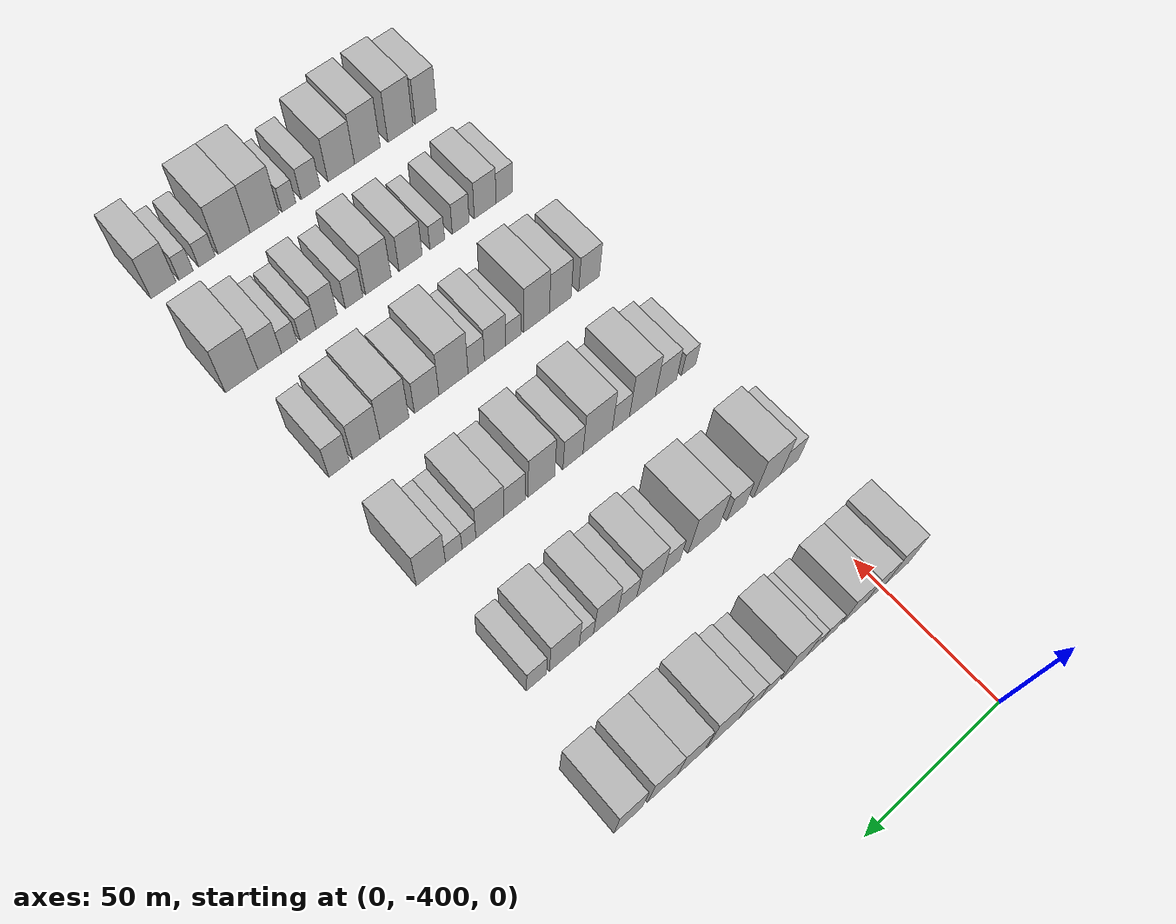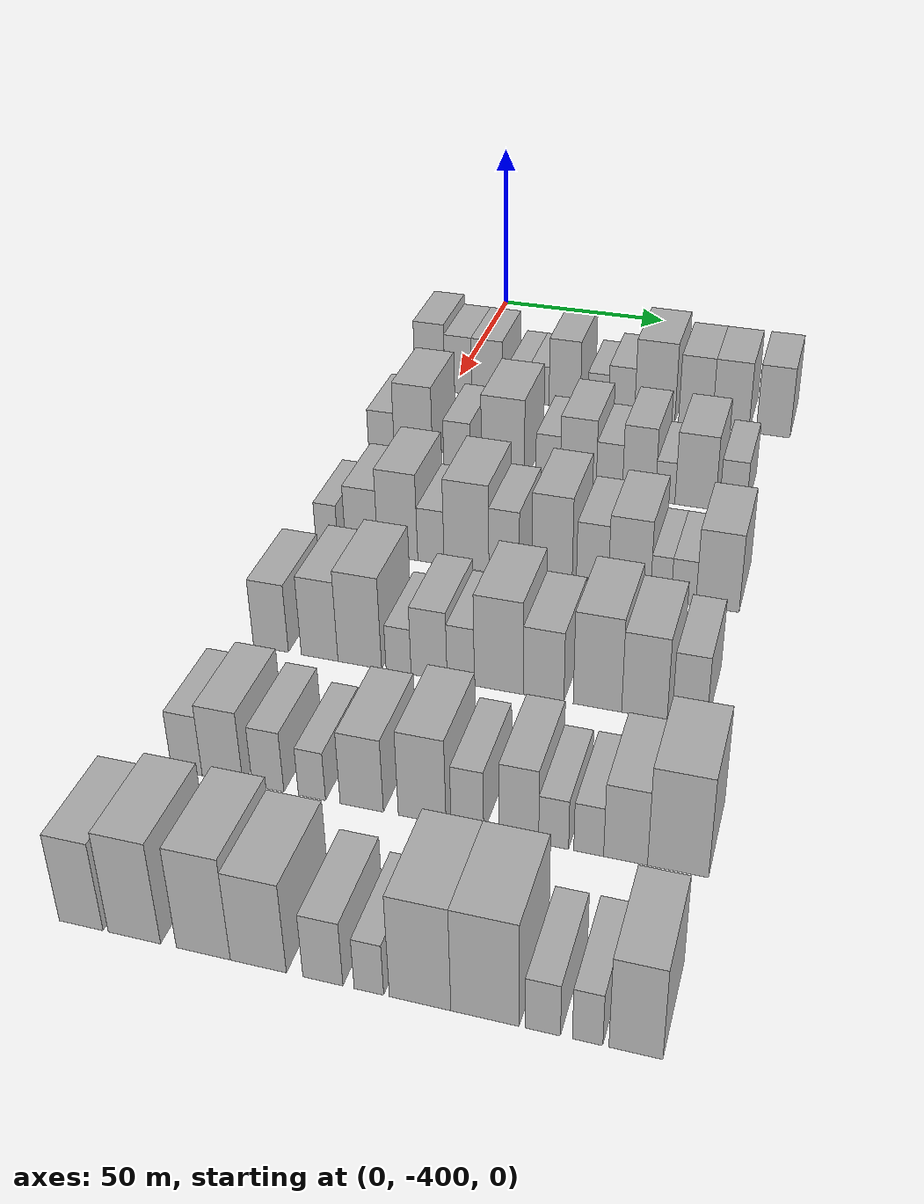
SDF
<sdf version="1.6">
 <world name="default">
  <model name="building_24">
   <static>1</static>
   <pose>50.0000 -405.9021 0 0.000000 0.000000 0.000000</pose>
   <link name="link">
    <pose>0 0 10.50 0 0 0</pose>
    <collision name="collision"><geometry><box><size>20.0000 8.8274 21.0000</size></box></geometry></collision>
    <visual name="visual">
     <cast_shadows>0</cast_shadows>
     <geometry><box><size>20.0000 8.8274 21.0000</size></box></geometry>
     <material>
      <script>
       <uri>model://HANNAS_wall/materials/scripts</uri>
       <uri>model://HANNAS_wall/materials/textures</uri>
       <name>vrc/HANNAS_wall</name>
      </script>
     </material>
    </visual>
   </link>
  </model>
  <model name="building_25">
   <static>1</static>
   <pose>50.0000 -397.5313 0 0.000000 0.000000 0.000000</pose>
   <link name="link">
    <pose>0 0 9.00 0 0 0</pose>
    <collision name="collision"><geometry><box><size>20.0000 7.9142 18.0000</size></box></geometry></collision>
    <visual name="visual">
     <cast_shadows>0</cast_shadows>
     <geometry><box><size>20.0000 7.9142 18.0000</size></box></geometry>
     <material>
      <script>
       <uri>model://HANNAS_wall/materials/scripts</uri>
       <uri>model://HANNAS_wall/materials/textures</uri>
       <name>vrc/HANNAS_wall</name>
      </script>
     </material>
    </visual>
   </link>
  </model>
  <model name="building_26">
   <static>1</static>
   <pose>50.0000 -389.0778 0 0.000000 0.000000 0.000000</pose>
   <link name="link">
    <pose>0 0 9.00 0 0 0</pose>
    <collision name="collision"><geometry><box><size>20.0000 8.9928 18.0000</size></box></geometry></collision>
    <visual name="visual">
     <cast_shadows>0</cast_shadows>
     <geometry><box><size>20.0000 8.9928 18.0000</size></box></geometry>
     <material>
      <script>
       <uri>model://HANNAS_wall/materials/scripts</uri>
       <uri>model://HANNAS_wall/materials/textures</uri>
       <name>vrc/HANNAS_wall</name>
      </script>
     </material>
    </visual>
   </link>
  </model>
  <model name="building_27">
   <static>1</static>
   <pose>50.0000 -379.6226 0 0.000000 0.000000 0.000000</pose>
   <link name="link">
    <pose>0 0 6.00 0 0 0</pose>
    <collision name="collision"><geometry><box><size>20.0000 5.9175 12.0000</size></box></geometry></collision>
    <visual name="visual">
     <cast_shadows>0</cast_shadows>
     <geometry><box><size>20.0000 5.9175 12.0000</size></box></geometry>
     <material>
      <script>
       <uri>model://HANNAS_wall/materials/scripts</uri>
       <uri>model://HANNAS_wall/materials/textures</uri>
       <name>vrc/HANNAS_wall</name>
      </script>
     </material>
    </visual>
   </link>
  </model>
  <model name="building_28">
   <static>1</static>
   <pose>50.0000 -373.9000 0 0.000000 0.000000 0.000000</pose>
   <link name="link">
    <pose>0 0 6.00 0 0 0</pose>
    <collision name="collision"><geometry><box><size>20.0000 5.5277 12.0000</size></box></geometry></collision>
    <visual name="visual">
     <cast_shadows>0</cast_shadows>
     <geometry><box><size>20.0000 5.5277 12.0000</size></box></geometry>
     <material>
      <script>
       <uri>model://HANNAS_wall/materials/scripts</uri>
       <uri>model://HANNAS_wall/materials/textures</uri>
       <name>vrc/HANNAS_wall</name>
      </script>
     </material>
    </visual>
   </link>
  </model>
  <model name="building_29">
   <static>1</static>
   <pose>50.0000 -366.6742 0 0.000000 0.000000 0.000000</pose>
   <link name="link">
    <pose>0 0 10.50 0 0 0</pose>
    <collision name="collision"><geometry><box><size>20.0000 8.9239 21.0000</size></box></geometry></collision>
    <visual name="visual">
     <cast_shadows>0</cast_shadows>
     <geometry><box><size>20.0000 8.9239 21.0000</size></box></geometry>
     <material>
      <script>
       <uri>model://HANNAS_wall/materials/scripts</uri>
       <uri>model://HANNAS_wall/materials/textures</uri>
       <name>vrc/HANNAS_wall</name>
      </script>
     </material>
    </visual>
   </link>
  </model>
  <model name="building_30">
   <static>1</static>
   <pose>50.0000 -357.2572 0 0.000000 0.000000 0.000000</pose>
   <link name="link">
    <pose>0 0 6.00 0 0 0</pose>
    <collision name="collision"><geometry><box><size>20.0000 5.9101 12.0000</size></box></geometry></collision>
    <visual name="visual">
     <cast_shadows>0</cast_shadows>
     <geometry><box><size>20.0000 5.9101 12.0000</size></box></geometry>
     <material>
      <script>
       <uri>model://HANNAS_wall/materials/scripts</uri>
       <uri>model://HANNAS_wall/materials/textures</uri>
       <name>vrc/HANNAS_wall</name>
      </script>
     </material>
    </visual>
   </link>
  </model>
  <model name="building_31">
   <static>1</static>
   <pose>50.0000 -350.6123 0 0.000000 0.000000 0.000000</pose>
   <link name="link">
    <pose>0 0 7.50 0 0 0</pose>
    <collision name="collision"><geometry><box><size>20.0000 7.3797 15.0000</size></box></geometry></collision>
    <visual name="visual">
     <cast_shadows>0</cast_shadows>
     <geometry><box><size>20.0000 7.3797 15.0000</size></box></geometry>
     <material>
      <script>
       <uri>model://HANNAS_wall/materials/scripts</uri>
       <uri>model://HANNAS_wall/materials/textures</uri>
       <name>vrc/HANNAS_wall</name>
      </script>
     </material>
    </visual>
   </link>
  </model>
  <model name="building_32">
   <static>1</static>
   <pose>50.0000 -341.3082 0 0.000000 0.000000 0.000000</pose>
   <link name="link">
    <pose>0 0 12.00 0 0 0</pose>
    <collision name="collision"><geometry><box><size>20.0000 11.2284 24.0000</size></box></geometry></collision>
    <visual name="visual">
     <cast_shadows>0</cast_shadows>
     <geometry><box><size>20.0000 11.2284 24.0000</size></box></geometry>
     <material>
      <script>
       <uri>model://HANNAS_wall/materials/scripts</uri>
       <uri>model://HANNAS_wall/materials/textures</uri>
       <name>vrc/HANNAS_wall</name>
      </script>
     </material>
    </visual>
   </link>
  </model>
  <model name="building_33">
   <static>1</static>
   <pose>50.0000 -330.0692 0 0.000000 0.000000 0.000000</pose>
   <link name="link">
    <pose>0 0 10.50 0 0 0</pose>
    <collision name="collision"><geometry><box><size>20.0000 9.2495 21.0000</size></box></geometry></collision>
    <visual name="visual">
     <cast_shadows>0</cast_shadows>
     <geometry><box><size>20.0000 9.2495 21.0000</size></box></geometry>
     <material>
      <script>
       <uri>model://HANNAS_wall/materials/scripts</uri>
       <uri>model://HANNAS_wall/materials/textures</uri>
       <name>vrc/HANNAS_wall</name>
      </script>
     </material>
    </visual>
   </link>
  </model>
  <model name="building_34">
   <static>1</static>
   <pose>50.0000 -320.4527 0 0.000000 0.000000 0.000000</pose>
   <link name="link">
    <pose>0 0 10.50 0 0 0</pose>
    <collision name="collision"><geometry><box><size>20.0000 9.9836 21.0000</size></box></geometry></collision>
    <visual name="visual">
     <cast_shadows>0</cast_shadows>
     <geometry><box><size>20.0000 9.9836 21.0000</size></box></geometry>
     <material>
      <script>
       <uri>model://HANNAS_wall/materials/scripts</uri>
       <uri>model://HANNAS_wall/materials/textures</uri>
       <name>vrc/HANNAS_wall</name>
      </script>
     </material>
    </visual>
   </link>
  </model>
  <model name="building_35">
   <static>1</static>
   <pose>50.0000 -308.9060 0 0.000000 0.000000 0.000000</pose>
   <link name="link">
    <pose>0 0 10.50 0 0 0</pose>
    <collision name="collision"><geometry><box><size>20.0000 9.1098 21.0000</size></box></geometry></collision>
    <visual name="visual">
     <cast_shadows>0</cast_shadows>
     <geometry><box><size>20.0000 9.1098 21.0000</size></box></geometry>
     <material>
      <script>
       <uri>model://HANNAS_wall/materials/scripts</uri>
       <uri>model://HANNAS_wall/materials/textures</uri>
       <name>vrc/HANNAS_wall</name>
      </script>
     </material>
    </visual>
   </link>
  </model>
  <model name="building_163">
   <static>1</static>
   <pose>90.0000 -406.2391 0 0.000000 0.000000 0.000000</pose>
   <link name="link">
    <pose>0 0 7.50 0 0 0</pose>
    <collision name="collision"><geometry><box><size>20.0000 7.1128 15.0000</size></box></geometry></collision>
    <visual name="visual">
     <cast_shadows>0</cast_shadows>
     <geometry><box><size>20.0000 7.1128 15.0000</size></box></geometry>
     <material>
      <script>
       <uri>model://HANNAS_wall/materials/scripts</uri>
       <uri>model://HANNAS_wall/materials/textures</uri>
       <name>vrc/HANNAS_wall</name>
      </script>
     </material>
    </visual>
   </link>
  </model>
  <model name="building_164">
   <static>1</static>
   <pose>90.0000 -397.4641 0 0.000000 0.000000 0.000000</pose>
   <link name="link">
    <pose>0 0 12.00 0 0 0</pose>
    <collision name="collision"><geometry><box><size>20.0000 10.4373 24.0000</size></box></geometry></collision>
    <visual name="visual">
     <cast_shadows>0</cast_shadows>
     <geometry><box><size>20.0000 10.4373 24.0000</size></box></geometry>
     <material>
      <script>
       <uri>model://HANNAS_wall/materials/scripts</uri>
       <uri>model://HANNAS_wall/materials/textures</uri>
       <name>vrc/HANNAS_wall</name>
      </script>
     </material>
    </visual>
   </link>
  </model>
  <model name="building_165">
   <static>1</static>
   <pose>90.0000 -385.6408 0 0.000000 0.000000 0.000000</pose>
   <link name="link">
    <pose>0 0 7.50 0 0 0</pose>
    <collision name="collision"><geometry><box><size>20.0000 7.2094 15.0000</size></box></geometry></collision>
    <visual name="visual">
     <cast_shadows>0</cast_shadows>
     <geometry><box><size>20.0000 7.2094 15.0000</size></box></geometry>
     <material>
      <script>
       <uri>model://HANNAS_wall/materials/scripts</uri>
       <uri>model://HANNAS_wall/materials/textures</uri>
       <name>vrc/HANNAS_wall</name>
      </script>
     </material>
    </visual>
   </link>
  </model>
  <model name="building_166">
   <static>1</static>
   <pose>90.0000 -373.3137 0 0.000000 0.000000 0.000000</pose>
   <link name="link">
    <pose>0 0 12.00 0 0 0</pose>
    <collision name="collision"><geometry><box><size>20.0000 11.4447 24.0000</size></box></geometry></collision>
    <visual name="visual">
     <cast_shadows>0</cast_shadows>
     <geometry><box><size>20.0000 11.4447 24.0000</size></box></geometry>
     <material>
      <script>
       <uri>model://HANNAS_wall/materials/scripts</uri>
       <uri>model://HANNAS_wall/materials/textures</uri>
       <name>vrc/HANNAS_wall</name>
      </script>
     </material>
    </visual>
   </link>
  </model>
  <model name="building_167">
   <static>1</static>
   <pose>90.0000 -361.3906 0 0.000000 0.000000 0.000000</pose>
   <link name="link">
    <pose>0 0 7.50 0 0 0</pose>
    <collision name="collision"><geometry><box><size>20.0000 6.4017 15.0000</size></box></geometry></collision>
    <visual name="visual">
     <cast_shadows>0</cast_shadows>
     <geometry><box><size>20.0000 6.4017 15.0000</size></box></geometry>
     <material>
      <script>
       <uri>model://HANNAS_wall/materials/scripts</uri>
       <uri>model://HANNAS_wall/materials/textures</uri>
       <name>vrc/HANNAS_wall</name>
      </script>
     </material>
    </visual>
   </link>
  </model>
  <model name="building_168">
   <static>1</static>
   <pose>90.0000 -353.5138 0 0.000000 0.000000 0.000000</pose>
   <link name="link">
    <pose>0 0 10.50 0 0 0</pose>
    <collision name="collision"><geometry><box><size>20.0000 9.3519 21.0000</size></box></geometry></collision>
    <visual name="visual">
     <cast_shadows>0</cast_shadows>
     <geometry><box><size>20.0000 9.3519 21.0000</size></box></geometry>
     <material>
      <script>
       <uri>model://HANNAS_wall/materials/scripts</uri>
       <uri>model://HANNAS_wall/materials/textures</uri>
       <name>vrc/HANNAS_wall</name>
      </script>
     </material>
    </visual>
   </link>
  </model>
  <model name="building_169">
   <static>1</static>
   <pose>90.0000 -345.4532 0 0.000000 0.000000 0.000000</pose>
   <link name="link">
    <pose>0 0 7.50 0 0 0</pose>
    <collision name="collision"><geometry><box><size>20.0000 6.7693 15.0000</size></box></geometry></collision>
    <visual name="visual">
     <cast_shadows>0</cast_shadows>
     <geometry><box><size>20.0000 6.7693 15.0000</size></box></geometry>
     <material>
      <script>
       <uri>model://HANNAS_wall/materials/scripts</uri>
       <uri>model://HANNAS_wall/materials/textures</uri>
       <name>vrc/HANNAS_wall</name>
      </script>
     </material>
    </visual>
   </link>
  </model>
  <model name="building_170">
   <static>1</static>
   <pose>90.0000 -337.8330 0 0.000000 0.000000 0.000000</pose>
   <link name="link">
    <pose>0 0 10.50 0 0 0</pose>
    <collision name="collision"><geometry><box><size>20.0000 8.4710 21.0000</size></box></geometry></collision>
    <visual name="visual">
     <cast_shadows>0</cast_shadows>
     <geometry><box><size>20.0000 8.4710 21.0000</size></box></geometry>
     <material>
      <script>
       <uri>model://HANNAS_wall/materials/scripts</uri>
       <uri>model://HANNAS_wall/materials/textures</uri>
       <name>vrc/HANNAS_wall</name>
      </script>
     </material>
    </visual>
   </link>
  </model>
  <model name="building_171">
   <static>1</static>
   <pose>90.0000 -331.0953 0 0.000000 0.000000 0.000000</pose>
   <link name="link">
    <pose>0 0 6.00 0 0 0</pose>
    <collision name="collision"><geometry><box><size>20.0000 5.0045 12.0000</size></box></geometry></collision>
    <visual name="visual">
     <cast_shadows>0</cast_shadows>
     <geometry><box><size>20.0000 5.0045 12.0000</size></box></geometry>
     <material>
      <script>
       <uri>model://HANNAS_wall/materials/scripts</uri>
       <uri>model://HANNAS_wall/materials/textures</uri>
       <name>vrc/HANNAS_wall</name>
      </script>
     </material>
    </visual>
   </link>
  </model>
  <model name="building_172">
   <static>1</static>
   <pose>90.0000 -323.5090 0 0.000000 0.000000 0.000000</pose>
   <link name="link">
    <pose>0 0 10.50 0 0 0</pose>
    <collision name="collision"><geometry><box><size>20.0000 10.1680 21.0000</size></box></geometry></collision>
    <visual name="visual">
     <cast_shadows>0</cast_shadows>
     <geometry><box><size>20.0000 10.1680 21.0000</size></box></geometry>
     <material>
      <script>
       <uri>model://HANNAS_wall/materials/scripts</uri>
       <uri>model://HANNAS_wall/materials/textures</uri>
       <name>vrc/HANNAS_wall</name>
      </script>
     </material>
    </visual>
   </link>
  </model>
  <model name="building_173">
   <static>1</static>
   <pose>90.0000 -314.0834 0 0.000000 0.000000 0.000000</pose>
   <link name="link">
    <pose>0 0 7.50 0 0 0</pose>
    <collision name="collision"><geometry><box><size>20.0000 6.6833 15.0000</size></box></geometry></collision>
    <visual name="visual">
     <cast_shadows>0</cast_shadows>
     <geometry><box><size>20.0000 6.6833 15.0000</size></box></geometry>
     <material>
      <script>
       <uri>model://HANNAS_wall/materials/scripts</uri>
       <uri>model://HANNAS_wall/materials/textures</uri>
       <name>vrc/HANNAS_wall</name>
      </script>
     </material>
    </visual>
   </link>
  </model>
  <model name="building_301">
   <static>1</static>
   <pose>130.0000 -406.1514 0 0.000000 0.000000 0.000000</pose>
   <link name="link">
    <pose>0 0 6.00 0 0 0</pose>
    <collision name="collision"><geometry><box><size>20.0000 5.6034 12.0000</size></box></geometry></collision>
    <visual name="visual">
     <cast_shadows>0</cast_shadows>
     <geometry><box><size>20.0000 5.6034 12.0000</size></box></geometry>
     <material>
      <script>
       <uri>model://HANNAS_wall/materials/scripts</uri>
       <uri>model://HANNAS_wall/materials/textures</uri>
       <name>vrc/HANNAS_wall</name>
      </script>
     </material>
    </visual>
   </link>
  </model>
  <model name="building_302">
   <static>1</static>
   <pose>130.0000 -397.2637 0 0.000000 0.000000 0.000000</pose>
   <link name="link">
    <pose>0 0 9.00 0 0 0</pose>
    <collision name="collision"><geometry><box><size>20.0000 8.1720 18.0000</size></box></geometry></collision>
    <visual name="visual">
     <cast_shadows>0</cast_shadows>
     <geometry><box><size>20.0000 8.1720 18.0000</size></box></geometry>
     <material>
      <script>
       <uri>model://HANNAS_wall/materials/scripts</uri>
       <uri>model://HANNAS_wall/materials/textures</uri>
       <name>vrc/HANNAS_wall</name>
      </script>
     </material>
    </visual>
   </link>
  </model>
  <model name="building_303">
   <static>1</static>
   <pose>130.0000 -388.1734 0 0.000000 0.000000 0.000000</pose>
   <link name="link">
    <pose>0 0 12.00 0 0 0</pose>
    <collision name="collision"><geometry><box><size>20.0000 10.0086 24.0000</size></box></geometry></collision>
    <visual name="visual">
     <cast_shadows>0</cast_shadows>
     <geometry><box><size>20.0000 10.0086 24.0000</size></box></geometry>
     <material>
      <script>
       <uri>model://HANNAS_wall/materials/scripts</uri>
       <uri>model://HANNAS_wall/materials/textures</uri>
       <name>vrc/HANNAS_wall</name>
      </script>
     </material>
    </visual>
   </link>
  </model>
  <model name="building_304">
   <static>1</static>
   <pose>130.0000 -379.8913 0 0.000000 0.000000 0.000000</pose>
   <link name="link">
    <pose>0 0 7.50 0 0 0</pose>
    <collision name="collision"><geometry><box><size>20.0000 6.5557 15.0000</size></box></geometry></collision>
    <visual name="visual">
     <cast_shadows>0</cast_shadows>
     <geometry><box><size>20.0000 6.5557 15.0000</size></box></geometry>
     <material>
      <script>
       <uri>model://HANNAS_wall/materials/scripts</uri>
       <uri>model://HANNAS_wall/materials/textures</uri>
       <name>vrc/HANNAS_wall</name>
      </script>
     </material>
    </visual>
   </link>
  </model>
  <model name="building_305">
   <static>1</static>
   <pose>130.0000 -371.1156 0 0.000000 0.000000 0.000000</pose>
   <link name="link">
    <pose>0 0 12.00 0 0 0</pose>
    <collision name="collision"><geometry><box><size>20.0000 10.9956 24.0000</size></box></geometry></collision>
    <visual name="visual">
     <cast_shadows>0</cast_shadows>
     <geometry><box><size>20.0000 10.9956 24.0000</size></box></geometry>
     <material>
      <script>
       <uri>model://HANNAS_wall/materials/scripts</uri>
       <uri>model://HANNAS_wall/materials/textures</uri>
       <name>vrc/HANNAS_wall</name>
      </script>
     </material>
    </visual>
   </link>
  </model>
  <model name="building_306">
   <static>1</static>
   <pose>130.0000 -361.9211 0 0.000000 0.000000 0.000000</pose>
   <link name="link">
    <pose>0 0 9.00 0 0 0</pose>
    <collision name="collision"><geometry><box><size>20.0000 7.3933 18.0000</size></box></geometry></collision>
    <visual name="visual">
     <cast_shadows>0</cast_shadows>
     <geometry><box><size>20.0000 7.3933 18.0000</size></box></geometry>
     <material>
      <script>
       <uri>model://HANNAS_wall/materials/scripts</uri>
       <uri>model://HANNAS_wall/materials/textures</uri>
       <name>vrc/HANNAS_wall</name>
      </script>
     </material>
    </visual>
   </link>
  </model>
  <model name="building_307">
   <static>1</static>
   <pose>130.0000 -350.4132 0 0.000000 0.000000 0.000000</pose>
   <link name="link">
    <pose>0 0 12.00 0 0 0</pose>
    <collision name="collision"><geometry><box><size>20.0000 9.6226 24.0000</size></box></geometry></collision>
    <visual name="visual">
     <cast_shadows>0</cast_shadows>
     <geometry><box><size>20.0000 9.6226 24.0000</size></box></geometry>
     <material>
      <script>
       <uri>model://HANNAS_wall/materials/scripts</uri>
       <uri>model://HANNAS_wall/materials/textures</uri>
       <name>vrc/HANNAS_wall</name>
      </script>
     </material>
    </visual>
   </link>
  </model>
  <model name="building_308">
   <static>1</static>
   <pose>130.0000 -340.8310 0 0.000000 0.000000 0.000000</pose>
   <link name="link">
    <pose>0 0 9.00 0 0 0</pose>
    <collision name="collision"><geometry><box><size>20.0000 7.5417 18.0000</size></box></geometry></collision>
    <visual name="visual">
     <cast_shadows>0</cast_shadows>
     <geometry><box><size>20.0000 7.5417 18.0000</size></box></geometry>
     <material>
      <script>
       <uri>model://HANNAS_wall/materials/scripts</uri>
       <uri>model://HANNAS_wall/materials/textures</uri>
       <name>vrc/HANNAS_wall</name>
      </script>
     </material>
    </visual>
   </link>
  </model>
  <model name="building_309">
   <static>1</static>
   <pose>130.0000 -332.1307 0 0.000000 0.000000 0.000000</pose>
   <link name="link">
    <pose>0 0 10.50 0 0 0</pose>
    <collision name="collision"><geometry><box><size>20.0000 9.8589 21.0000</size></box></geometry></collision>
    <visual name="visual">
     <cast_shadows>0</cast_shadows>
     <geometry><box><size>20.0000 9.8589 21.0000</size></box></geometry>
     <material>
      <script>
       <uri>model://HANNAS_wall/materials/scripts</uri>
       <uri>model://HANNAS_wall/materials/textures</uri>
       <name>vrc/HANNAS_wall</name>
      </script>
     </material>
    </visual>
   </link>
  </model>
  <model name="building_310">
   <static>1</static>
   <pose>130.0000 -324.7926 0 0.000000 0.000000 0.000000</pose>
   <link name="link">
    <pose>0 0 6.00 0 0 0</pose>
    <collision name="collision"><geometry><box><size>20.0000 4.8172 12.0000</size></box></geometry></collision>
    <visual name="visual">
     <cast_shadows>0</cast_shadows>
     <geometry><box><size>20.0000 4.8172 12.0000</size></box></geometry>
     <material>
      <script>
       <uri>model://HANNAS_wall/materials/scripts</uri>
       <uri>model://HANNAS_wall/materials/textures</uri>
       <name>vrc/HANNAS_wall</name>
      </script>
     </material>
    </visual>
   </link>
  </model>
  <model name="building_311">
   <static>1</static>
   <pose>130.0000 -319.5479 0 0.000000 0.000000 0.000000</pose>
   <link name="link">
    <pose>0 0 6.00 0 0 0</pose>
    <collision name="collision"><geometry><box><size>20.0000 5.6723 12.0000</size></box></geometry></collision>
    <visual name="visual">
     <cast_shadows>0</cast_shadows>
     <geometry><box><size>20.0000 5.6723 12.0000</size></box></geometry>
     <material>
      <script>
       <uri>model://HANNAS_wall/materials/scripts</uri>
       <uri>model://HANNAS_wall/materials/textures</uri>
       <name>vrc/HANNAS_wall</name>
      </script>
     </material>
    </visual>
   </link>
  </model>
  <model name="building_312">
   <static>1</static>
   <pose>130.0000 -311.7525 0 0.000000 0.000000 0.000000</pose>
   <link name="link">
    <pose>0 0 10.50 0 0 0</pose>
    <collision name="collision"><geometry><box><size>20.0000 9.9184 21.0000</size></box></geometry></collision>
    <visual name="visual">
     <cast_shadows>0</cast_shadows>
     <geometry><box><size>20.0000 9.9184 21.0000</size></box></geometry>
     <material>
      <script>
       <uri>model://HANNAS_wall/materials/scripts</uri>
       <uri>model://HANNAS_wall/materials/textures</uri>
       <name>vrc/HANNAS_wall</name>
      </script>
     </material>
    </visual>
   </link>
  </model>
  <model name="building_438">
   <static>1</static>
   <pose>170.0000 -403.7388 0 0.000000 0.000000 0.000000</pose>
   <link name="link">
    <pose>0 0 9.00 0 0 0</pose>
    <collision name="collision"><geometry><box><size>20.0000 8.2059 18.0000</size></box></geometry></collision>
    <visual name="visual">
     <cast_shadows>0</cast_shadows>
     <geometry><box><size>20.0000 8.2059 18.0000</size></box></geometry>
     <material>
      <script>
       <uri>model://HANNAS_wall/materials/scripts</uri>
       <uri>model://HANNAS_wall/materials/textures</uri>
       <name>vrc/HANNAS_wall</name>
      </script>
     </material>
    </visual>
   </link>
  </model>
  <model name="building_439">
   <static>1</static>
   <pose>170.0000 -392.3831 0 0.000000 0.000000 0.000000</pose>
   <link name="link">
    <pose>0 0 10.50 0 0 0</pose>
    <collision name="collision"><geometry><box><size>20.0000 8.5055 21.0000</size></box></geometry></collision>
    <visual name="visual">
     <cast_shadows>0</cast_shadows>
     <geometry><box><size>20.0000 8.5055 21.0000</size></box></geometry>
     <material>
      <script>
       <uri>model://HANNAS_wall/materials/scripts</uri>
       <uri>model://HANNAS_wall/materials/textures</uri>
       <name>vrc/HANNAS_wall</name>
      </script>
     </material>
    </visual>
   </link>
  </model>
  <model name="building_440">
   <static>1</static>
   <pose>170.0000 -383.1347 0 0.000000 0.000000 0.000000</pose>
   <link name="link">
    <pose>0 0 12.00 0 0 0</pose>
    <collision name="collision"><geometry><box><size>20.0000 9.9913 24.0000</size></box></geometry></collision>
    <visual name="visual">
     <cast_shadows>0</cast_shadows>
     <geometry><box><size>20.0000 9.9913 24.0000</size></box></geometry>
     <material>
      <script>
       <uri>model://HANNAS_wall/materials/scripts</uri>
       <uri>model://HANNAS_wall/materials/textures</uri>
       <name>vrc/HANNAS_wall</name>
      </script>
     </material>
    </visual>
   </link>
  </model>
  <model name="building_441">
   <static>1</static>
   <pose>170.0000 -374.2988 0 0.000000 0.000000 0.000000</pose>
   <link name="link">
    <pose>0 0 6.00 0 0 0</pose>
    <collision name="collision"><geometry><box><size>20.0000 5.6805 12.0000</size></box></geometry></collision>
    <visual name="visual">
     <cast_shadows>0</cast_shadows>
     <geometry><box><size>20.0000 5.6805 12.0000</size></box></geometry>
     <material>
      <script>
       <uri>model://HANNAS_wall/materials/scripts</uri>
       <uri>model://HANNAS_wall/materials/textures</uri>
       <name>vrc/HANNAS_wall</name>
      </script>
     </material>
    </visual>
   </link>
  </model>
  <model name="building_442">
   <static>1</static>
   <pose>170.0000 -367.4340 0 0.000000 0.000000 0.000000</pose>
   <link name="link">
    <pose>0 0 9.00 0 0 0</pose>
    <collision name="collision"><geometry><box><size>20.0000 8.0490 18.0000</size></box></geometry></collision>
    <visual name="visual">
     <cast_shadows>0</cast_shadows>
     <geometry><box><size>20.0000 8.0490 18.0000</size></box></geometry>
     <material>
      <script>
       <uri>model://HANNAS_wall/materials/scripts</uri>
       <uri>model://HANNAS_wall/materials/textures</uri>
       <name>vrc/HANNAS_wall</name>
      </script>
     </material>
    </visual>
   </link>
  </model>
  <model name="building_443">
   <static>1</static>
   <pose>170.0000 -360.3799 0 0.000000 0.000000 0.000000</pose>
   <link name="link">
    <pose>0 0 7.50 0 0 0</pose>
    <collision name="collision"><geometry><box><size>20.0000 6.0594 15.0000</size></box></geometry></collision>
    <visual name="visual">
     <cast_shadows>0</cast_shadows>
     <geometry><box><size>20.0000 6.0594 15.0000</size></box></geometry>
     <material>
      <script>
       <uri>model://HANNAS_wall/materials/scripts</uri>
       <uri>model://HANNAS_wall/materials/textures</uri>
       <name>vrc/HANNAS_wall</name>
      </script>
     </material>
    </visual>
   </link>
  </model>
  <model name="building_444">
   <static>1</static>
   <pose>170.0000 -352.0134 0 0.000000 0.000000 0.000000</pose>
   <link name="link">
    <pose>0 0 12.00 0 0 0</pose>
    <collision name="collision"><geometry><box><size>20.0000 10.6735 24.0000</size></box></geometry></collision>
    <visual name="visual">
     <cast_shadows>0</cast_shadows>
     <geometry><box><size>20.0000 10.6735 24.0000</size></box></geometry>
     <material>
      <script>
       <uri>model://HANNAS_wall/materials/scripts</uri>
       <uri>model://HANNAS_wall/materials/textures</uri>
       <name>vrc/HANNAS_wall</name>
      </script>
     </material>
    </visual>
   </link>
  </model>
  <model name="building_445">
   <static>1</static>
   <pose>170.0000 -342.2707 0 0.000000 0.000000 0.000000</pose>
   <link name="link">
    <pose>0 0 9.00 0 0 0</pose>
    <collision name="collision"><geometry><box><size>20.0000 8.8120 18.0000</size></box></geometry></collision>
    <visual name="visual">
     <cast_shadows>0</cast_shadows>
     <geometry><box><size>20.0000 8.8120 18.0000</size></box></geometry>
     <material>
      <script>
       <uri>model://HANNAS_wall/materials/scripts</uri>
       <uri>model://HANNAS_wall/materials/textures</uri>
       <name>vrc/HANNAS_wall</name>
      </script>
     </material>
    </visual>
   </link>
  </model>
  <model name="building_446">
   <static>1</static>
   <pose>170.0000 -330.7211 0 0.000000 0.000000 0.000000</pose>
   <link name="link">
    <pose>0 0 12.00 0 0 0</pose>
    <collision name="collision"><geometry><box><size>20.0000 10.2873 24.0000</size></box></geometry></collision>
    <visual name="visual">
     <cast_shadows>0</cast_shadows>
     <geometry><box><size>20.0000 10.2873 24.0000</size></box></geometry>
     <material>
      <script>
       <uri>model://HANNAS_wall/materials/scripts</uri>
       <uri>model://HANNAS_wall/materials/textures</uri>
       <name>vrc/HANNAS_wall</name>
      </script>
     </material>
    </visual>
   </link>
  </model>
  <model name="building_447">
   <static>1</static>
   <pose>170.0000 -320.8037 0 0.000000 0.000000 0.000000</pose>
   <link name="link">
    <pose>0 0 10.50 0 0 0</pose>
    <collision name="collision"><geometry><box><size>20.0000 9.5475 21.0000</size></box></geometry></collision>
    <visual name="visual">
     <cast_shadows>0</cast_shadows>
     <geometry><box><size>20.0000 9.5475 21.0000</size></box></geometry>
     <material>
      <script>
       <uri>model://HANNAS_wall/materials/scripts</uri>
       <uri>model://HANNAS_wall/materials/textures</uri>
       <name>vrc/HANNAS_wall</name>
      </script>
     </material>
    </visual>
   </link>
  </model>
  <model name="building_448">
   <static>1</static>
   <pose>170.0000 -311.4297 0 0.000000 0.000000 0.000000</pose>
   <link name="link">
    <pose>0 0 9.00 0 0 0</pose>
    <collision name="collision"><geometry><box><size>20.0000 7.2004 18.0000</size></box></geometry></collision>
    <visual name="visual">
     <cast_shadows>0</cast_shadows>
     <geometry><box><size>20.0000 7.2004 18.0000</size></box></geometry>
     <material>
      <script>
       <uri>model://HANNAS_wall/materials/scripts</uri>
       <uri>model://HANNAS_wall/materials/textures</uri>
       <name>vrc/HANNAS_wall</name>
      </script>
     </material>
    </visual>
   </link>
  </model>
  <model name="building_578">
   <static>1</static>
   <pose>210.0000 -404.6535 0 0.000000 0.000000 0.000000</pose>
   <link name="link">
    <pose>0 0 7.50 0 0 0</pose>
    <collision name="collision"><geometry><box><size>20.0000 6.5877 15.0000</size></box></geometry></collision>
    <visual name="visual">
     <cast_shadows>0</cast_shadows>
     <geometry><box><size>20.0000 6.5877 15.0000</size></box></geometry>
     <material>
      <script>
       <uri>model://HANNAS_wall/materials/scripts</uri>
       <uri>model://HANNAS_wall/materials/textures</uri>
       <name>vrc/HANNAS_wall</name>
      </script>
     </material>
    </visual>
   </link>
  </model>
  <model name="building_579">
   <static>1</static>
   <pose>210.0000 -397.0389 0 0.000000 0.000000 0.000000</pose>
   <link name="link">
    <pose>0 0 9.00 0 0 0</pose>
    <collision name="collision"><geometry><box><size>20.0000 8.6416 18.0000</size></box></geometry></collision>
    <visual name="visual">
     <cast_shadows>0</cast_shadows>
     <geometry><box><size>20.0000 8.6416 18.0000</size></box></geometry>
     <material>
      <script>
       <uri>model://HANNAS_wall/materials/scripts</uri>
       <uri>model://HANNAS_wall/materials/textures</uri>
       <name>vrc/HANNAS_wall</name>
      </script>
     </material>
    </visual>
   </link>
  </model>
  <model name="building_580">
   <static>1</static>
   <pose>210.0000 -387.4082 0 0.000000 0.000000 0.000000</pose>
   <link name="link">
    <pose>0 0 7.50 0 0 0</pose>
    <collision name="collision"><geometry><box><size>20.0000 6.6198 15.0000</size></box></geometry></collision>
    <visual name="visual">
     <cast_shadows>0</cast_shadows>
     <geometry><box><size>20.0000 6.6198 15.0000</size></box></geometry>
     <material>
      <script>
       <uri>model://HANNAS_wall/materials/scripts</uri>
       <uri>model://HANNAS_wall/materials/textures</uri>
       <name>vrc/HANNAS_wall</name>
      </script>
     </material>
    </visual>
   </link>
  </model>
  <model name="building_581">
   <static>1</static>
   <pose>210.0000 -378.2880 0 0.000000 0.000000 0.000000</pose>
   <link name="link">
    <pose>0 0 6.00 0 0 0</pose>
    <collision name="collision"><geometry><box><size>20.0000 5.6206 12.0000</size></box></geometry></collision>
    <visual name="visual">
     <cast_shadows>0</cast_shadows>
     <geometry><box><size>20.0000 5.6206 12.0000</size></box></geometry>
     <material>
      <script>
       <uri>model://HANNAS_wall/materials/scripts</uri>
       <uri>model://HANNAS_wall/materials/textures</uri>
       <name>vrc/HANNAS_wall</name>
      </script>
     </material>
    </visual>
   </link>
  </model>
  <model name="building_582">
   <static>1</static>
   <pose>210.0000 -368.0732 0 0.000000 0.000000 0.000000</pose>
   <link name="link">
    <pose>0 0 9.00 0 0 0</pose>
    <collision name="collision"><geometry><box><size>20.0000 8.8091 18.0000</size></box></geometry></collision>
    <visual name="visual">
     <cast_shadows>0</cast_shadows>
     <geometry><box><size>20.0000 8.8091 18.0000</size></box></geometry>
     <material>
      <script>
       <uri>model://HANNAS_wall/materials/scripts</uri>
       <uri>model://HANNAS_wall/materials/textures</uri>
       <name>vrc/HANNAS_wall</name>
      </script>
     </material>
    </visual>
   </link>
  </model>
  <model name="building_583">
   <static>1</static>
   <pose>210.0000 -355.8980 0 0.000000 0.000000 0.000000</pose>
   <link name="link">
    <pose>0 0 10.50 0 0 0</pose>
    <collision name="collision"><geometry><box><size>20.0000 9.5412 21.0000</size></box></geometry></collision>
    <visual name="visual">
     <cast_shadows>0</cast_shadows>
     <geometry><box><size>20.0000 9.5412 21.0000</size></box></geometry>
     <material>
      <script>
       <uri>model://HANNAS_wall/materials/scripts</uri>
       <uri>model://HANNAS_wall/materials/textures</uri>
       <name>vrc/HANNAS_wall</name>
      </script>
     </material>
    </visual>
   </link>
  </model>
  <model name="building_584">
   <static>1</static>
   <pose>210.0000 -346.9233 0 0.000000 0.000000 0.000000</pose>
   <link name="link">
    <pose>0 0 7.50 0 0 0</pose>
    <collision name="collision"><geometry><box><size>20.0000 6.4082 15.0000</size></box></geometry></collision>
    <visual name="visual">
     <cast_shadows>0</cast_shadows>
     <geometry><box><size>20.0000 6.4082 15.0000</size></box></geometry>
     <material>
      <script>
       <uri>model://HANNAS_wall/materials/scripts</uri>
       <uri>model://HANNAS_wall/materials/textures</uri>
       <name>vrc/HANNAS_wall</name>
      </script>
     </material>
    </visual>
   </link>
  </model>
  <model name="building_585">
   <static>1</static>
   <pose>210.0000 -336.8804 0 0.000000 0.000000 0.000000</pose>
   <link name="link">
    <pose>0 0 9.00 0 0 0</pose>
    <collision name="collision"><geometry><box><size>20.0000 7.6775 18.0000</size></box></geometry></collision>
    <visual name="visual">
     <cast_shadows>0</cast_shadows>
     <geometry><box><size>20.0000 7.6775 18.0000</size></box></geometry>
     <material>
      <script>
       <uri>model://HANNAS_wall/materials/scripts</uri>
       <uri>model://HANNAS_wall/materials/textures</uri>
       <name>vrc/HANNAS_wall</name>
      </script>
     </material>
    </visual>
   </link>
  </model>
  <model name="building_586">
   <static>1</static>
   <pose>210.0000 -330.1733 0 0.000000 0.000000 0.000000</pose>
   <link name="link">
    <pose>0 0 6.00 0 0 0</pose>
    <collision name="collision"><geometry><box><size>20.0000 5.7368 12.0000</size></box></geometry></collision>
    <visual name="visual">
     <cast_shadows>0</cast_shadows>
     <geometry><box><size>20.0000 5.7368 12.0000</size></box></geometry>
     <material>
      <script>
       <uri>model://HANNAS_wall/materials/scripts</uri>
       <uri>model://HANNAS_wall/materials/textures</uri>
       <name>vrc/HANNAS_wall</name>
      </script>
     </material>
    </visual>
   </link>
  </model>
  <model name="building_587">
   <static>1</static>
   <pose>210.0000 -323.4801 0 0.000000 0.000000 0.000000</pose>
   <link name="link">
    <pose>0 0 6.00 0 0 0</pose>
    <collision name="collision"><geometry><box><size>20.0000 5.6495 12.0000</size></box></geometry></collision>
    <visual name="visual">
     <cast_shadows>0</cast_shadows>
     <geometry><box><size>20.0000 5.6495 12.0000</size></box></geometry>
     <material>
      <script>
       <uri>model://HANNAS_wall/materials/scripts</uri>
       <uri>model://HANNAS_wall/materials/textures</uri>
       <name>vrc/HANNAS_wall</name>
      </script>
     </material>
    </visual>
   </link>
  </model>
  <model name="building_588">
   <static>1</static>
   <pose>210.0000 -316.5294 0 0.000000 0.000000 0.000000</pose>
   <link name="link">
    <pose>0 0 9.00 0 0 0</pose>
    <collision name="collision"><geometry><box><size>20.0000 8.2520 18.0000</size></box></geometry></collision>
    <visual name="visual">
     <cast_shadows>0</cast_shadows>
     <geometry><box><size>20.0000 8.2520 18.0000</size></box></geometry>
     <material>
      <script>
       <uri>model://HANNAS_wall/materials/scripts</uri>
       <uri>model://HANNAS_wall/materials/textures</uri>
       <name>vrc/HANNAS_wall</name>
      </script>
     </material>
    </visual>
   </link>
  </model>
  <model name="building_589">
   <static>1</static>
   <pose>210.0000 -306.7556 0 0.000000 0.000000 0.000000</pose>
   <link name="link">
    <pose>0 0 12.00 0 0 0</pose>
    <collision name="collision"><geometry><box><size>20.0000 11.2955 24.0000</size></box></geometry></collision>
    <visual name="visual">
     <cast_shadows>0</cast_shadows>
     <geometry><box><size>20.0000 11.2955 24.0000</size></box></geometry>
     <material>
      <script>
       <uri>model://HANNAS_wall/materials/scripts</uri>
       <uri>model://HANNAS_wall/materials/textures</uri>
       <name>vrc/HANNAS_wall</name>
      </script>
     </material>
    </visual>
   </link>
  </model>
  <model name="building_719">
   <static>1</static>
   <pose>250.0000 -405.8015 0 0.000000 0.000000 0.000000</pose>
   <link name="link">
    <pose>0 0 10.50 0 0 0</pose>
    <collision name="collision"><geometry><box><size>20.0000 8.5366 21.0000</size></box></geometry></collision>
    <visual name="visual">
     <cast_shadows>0</cast_shadows>
     <geometry><box><size>20.0000 8.5366 21.0000</size></box></geometry>
     <material>
      <script>
       <uri>model://HANNAS_wall/materials/scripts</uri>
       <uri>model://HANNAS_wall/materials/textures</uri>
       <name>vrc/HANNAS_wall</name>
      </script>
     </material>
    </visual>
   </link>
  </model>
  <model name="building_720">
   <static>1</static>
   <pose>250.0000 -395.5220 0 0.000000 0.000000 0.000000</pose>
   <link name="link">
    <pose>0 0 12.00 0 0 0</pose>
    <collision name="collision"><geometry><box><size>20.0000 10.0223 24.0000</size></box></geometry></collision>
    <visual name="visual">
     <cast_shadows>0</cast_shadows>
     <geometry><box><size>20.0000 10.0223 24.0000</size></box></geometry>
     <material>
      <script>
       <uri>model://HANNAS_wall/materials/scripts</uri>
       <uri>model://HANNAS_wall/materials/textures</uri>
       <name>vrc/HANNAS_wall</name>
      </script>
     </material>
    </visual>
   </link>
  </model>
  <model name="building_721">
   <static>1</static>
   <pose>250.0000 -382.4544 0 0.000000 0.000000 0.000000</pose>
   <link name="link">
    <pose>0 0 12.00 0 0 0</pose>
    <collision name="collision"><geometry><box><size>20.0000 10.1128 24.0000</size></box></geometry></collision>
    <visual name="visual">
     <cast_shadows>0</cast_shadows>
     <geometry><box><size>20.0000 10.1128 24.0000</size></box></geometry>
     <material>
      <script>
       <uri>model://HANNAS_wall/materials/scripts</uri>
       <uri>model://HANNAS_wall/materials/textures</uri>
       <name>vrc/HANNAS_wall</name>
      </script>
     </material>
    </visual>
   </link>
  </model>
  <model name="building_722">
   <static>1</static>
   <pose>250.0000 -372.2261 0 0.000000 0.000000 0.000000</pose>
   <link name="link">
    <pose>0 0 10.50 0 0 0</pose>
    <collision name="collision"><geometry><box><size>20.0000 10.3439 21.0000</size></box></geometry></collision>
    <visual name="visual">
     <cast_shadows>0</cast_shadows>
     <geometry><box><size>20.0000 10.3439 21.0000</size></box></geometry>
     <material>
      <script>
       <uri>model://HANNAS_wall/materials/scripts</uri>
       <uri>model://HANNAS_wall/materials/textures</uri>
       <name>vrc/HANNAS_wall</name>
      </script>
     </material>
    </visual>
   </link>
  </model>
  <model name="building_723">
   <static>1</static>
   <pose>250.0000 -360.4392 0 0.000000 0.000000 0.000000</pose>
   <link name="link">
    <pose>0 0 7.50 0 0 0</pose>
    <collision name="collision"><geometry><box><size>20.0000 7.2298 15.0000</size></box></geometry></collision>
    <visual name="visual">
     <cast_shadows>0</cast_shadows>
     <geometry><box><size>20.0000 7.2298 15.0000</size></box></geometry>
     <material>
      <script>
       <uri>model://HANNAS_wall/materials/scripts</uri>
       <uri>model://HANNAS_wall/materials/textures</uri>
       <name>vrc/HANNAS_wall</name>
      </script>
     </material>
    </visual>
   </link>
  </model>
  <model name="building_724">
   <static>1</static>
   <pose>250.0000 -352.1906 0 0.000000 0.000000 0.000000</pose>
   <link name="link">
    <pose>0 0 6.00 0 0 0</pose>
    <collision name="collision"><geometry><box><size>20.0000 5.2675 12.0000</size></box></geometry></collision>
    <visual name="visual">
     <cast_shadows>0</cast_shadows>
     <geometry><box><size>20.0000 5.2675 12.0000</size></box></geometry>
     <material>
      <script>
       <uri>model://HANNAS_wall/materials/scripts</uri>
       <uri>model://HANNAS_wall/materials/textures</uri>
       <name>vrc/HANNAS_wall</name>
      </script>
     </material>
    </visual>
   </link>
  </model>
  <model name="building_725">
   <static>1</static>
   <pose>250.0000 -343.1725 0 0.000000 0.000000 0.000000</pose>
   <link name="link">
    <pose>0 0 12.00 0 0 0</pose>
    <collision name="collision"><geometry><box><size>20.0000 10.7687 24.0000</size></box></geometry></collision>
    <visual name="visual">
     <cast_shadows>0</cast_shadows>
     <geometry><box><size>20.0000 10.7687 24.0000</size></box></geometry>
     <material>
      <script>
       <uri>model://HANNAS_wall/materials/scripts</uri>
       <uri>model://HANNAS_wall/materials/textures</uri>
       <name>vrc/HANNAS_wall</name>
      </script>
     </material>
    </visual>
   </link>
  </model>
  <model name="building_726">
   <static>1</static>
   <pose>250.0000 -331.9247 0 0.000000 0.000000 0.000000</pose>
   <link name="link">
    <pose>0 0 12.00 0 0 0</pose>
    <collision name="collision"><geometry><box><size>20.0000 11.7269 24.0000</size></box></geometry></collision>
    <visual name="visual">
     <cast_shadows>0</cast_shadows>
     <geometry><box><size>20.0000 11.7269 24.0000</size></box></geometry>
     <material>
      <script>
       <uri>model://HANNAS_wall/materials/scripts</uri>
       <uri>model://HANNAS_wall/materials/textures</uri>
       <name>vrc/HANNAS_wall</name>
      </script>
     </material>
    </visual>
   </link>
  </model>
  <model name="building_727">
   <static>1</static>
   <pose>250.0000 -322.0849 0 0.000000 0.000000 0.000000</pose>
   <link name="link">
    <pose>0 0 6.00 0 0 0</pose>
    <collision name="collision"><geometry><box><size>20.0000 5.9528 12.0000</size></box></geometry></collision>
    <visual name="visual">
     <cast_shadows>0</cast_shadows>
     <geometry><box><size>20.0000 5.9528 12.0000</size></box></geometry>
     <material>
      <script>
       <uri>model://HANNAS_wall/materials/scripts</uri>
       <uri>model://HANNAS_wall/materials/textures</uri>
       <name>vrc/HANNAS_wall</name>
      </script>
     </material>
    </visual>
   </link>
  </model>
  <model name="building_728">
   <static>1</static>
   <pose>250.0000 -314.5724 0 0.000000 0.000000 0.000000</pose>
   <link name="link">
    <pose>0 0 6.00 0 0 0</pose>
    <collision name="collision"><geometry><box><size>20.0000 5.0721 12.0000</size></box></geometry></collision>
    <visual name="visual">
     <cast_shadows>0</cast_shadows>
     <geometry><box><size>20.0000 5.0721 12.0000</size></box></geometry>
     <material>
      <script>
       <uri>model://HANNAS_wall/materials/scripts</uri>
       <uri>model://HANNAS_wall/materials/textures</uri>
       <name>vrc/HANNAS_wall</name>
      </script>
     </material>
    </visual>
   </link>
  </model>
  <model name="building_729">
   <static>1</static>
   <pose>250.0000 -306.6019 0 0.000000 0.000000 0.000000</pose>
   <link name="link">
    <pose>0 0 10.50 0 0 0</pose>
    <collision name="collision"><geometry><box><size>20.0000 8.8690 21.0000</size></box></geometry></collision>
    <visual name="visual">
     <cast_shadows>0</cast_shadows>
     <geometry><box><size>20.0000 8.8690 21.0000</size></box></geometry>
     <material>
      <script>
       <uri>model://HANNAS_wall/materials/scripts</uri>
       <uri>model://HANNAS_wall/materials/textures</uri>
       <name>vrc/HANNAS_wall</name>
      </script>
     </material>
    </visual>
   </link>
  </model>
 </world>
</sdf>
